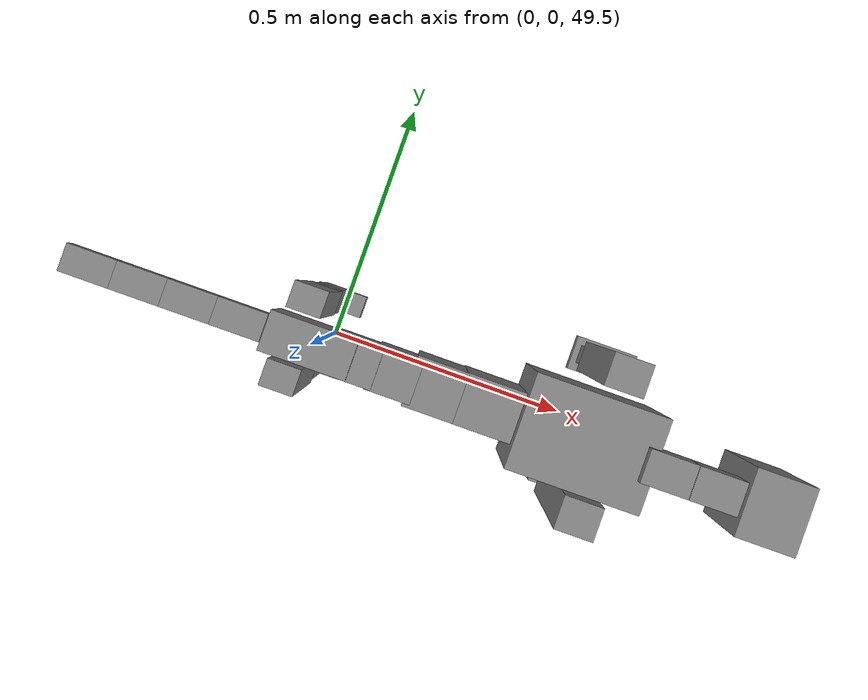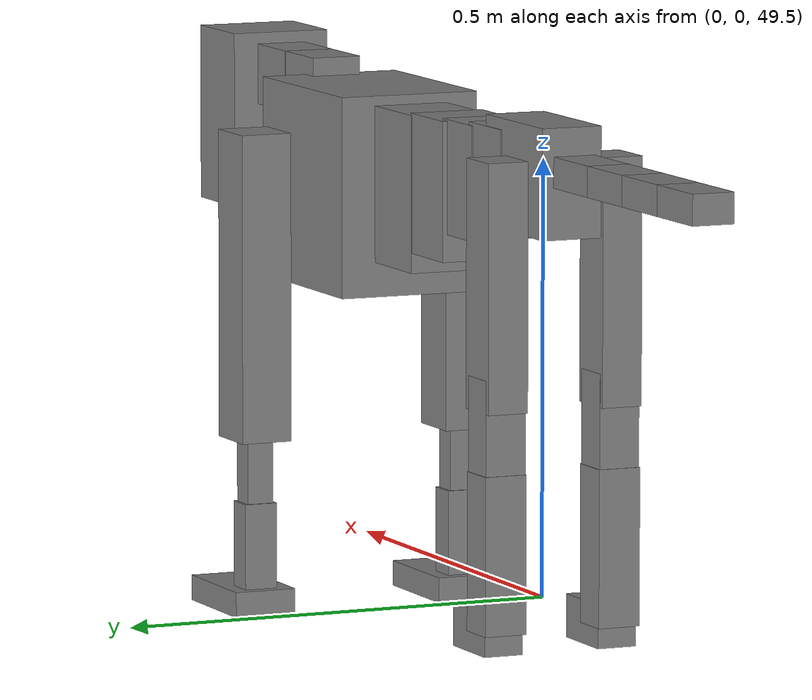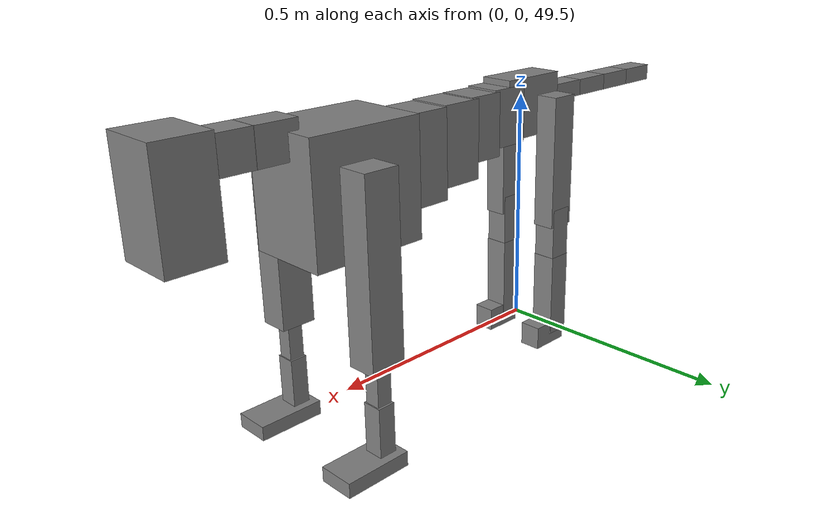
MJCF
<mujoco model="dog">

    <default>
        <joint armature="0.02" stiffness="1" damping="0.2" limited="true"/>
        <geom condim="3" friction="1 0.05 0.05" margin="0.01"/>
        <motor ctrllimited="true" ctrlrange="-1.0 1.0" forcelimited="true" gear="50"/>
    </default>

    <compiler inertiafromgeom="true" angle="radian"/>

    <option timestep="0.016" iterations="50" tolerance="1e-10" solver="Newton" jacobian="dense" cone="pyramidal"/>

    <size nconmax="20000" njmax="60000" nstack="5000000"/>
    <visual>
        <map force="0.1" zfar="30"/>
        <rgba haze="0.15 0.25 0.35 1"/>
        <quality shadowsize="2048"/>
        <global offwidth="800" offheight="800"/>
    </visual>

    <asset>
        <texture type="skybox" builtin="gradient" rgb1="0.3 0.5 0.7" rgb2="0 0 0" width="512" height="512"/>
        <texture name="texplane" type="2d" builtin="checker" rgb1=".2 .3 .4" rgb2=".1 0.15 0.2" width="512" height="512"
                 mark="cross" markrgb=".8 .8 .8"/>
        <texture name="texgeom" type="cube" builtin="flat" mark="cross" width="127" height="1278" rgb1="0.8 0.6 0.4"
                 rgb2="0.8 0.6 0.4" markrgb="1 1 1" random="0.01"/>

        <material name="matplane" reflectance="0.3" texture="texplane" texrepeat="1 1" texuniform="true"/>
        <material name="matgeom" texture="texgeom" texuniform="true" rgba="0.8 0.6 .4 1"/>
    </asset>

    <worldbody>
        <geom name="floor" pos="0 0 0" size="0 0 .25" type="plane" material="matplane" condim="3"/>

        <light directional="false" diffuse=".2 .2 .2" specular="0 0 0" pos="0 0 5" dir="0 0 -1" castshadow="false"/>
        <light mode="targetbodycom" target="torso" directional="false" diffuse=".8 .8 .8" specular="0.3 0.3 0.3"
               pos="0 0 4.0" dir="0 0 -1"/>

        <body name="root" pos="0 0 50">
            <freejoint name="root_1"/>
            <geom type="box" pos="0 0 -0.02" size="0.0774  0.0358  0.063" density="2030"/>

            <body name="spine1" pos="0.054 0 0">
                <joint name="spine1_y" axis="0 1 0" range="0 0.7" limited="true"/>
                <geom type="box" pos="0.02375 0 -0.03" size="0.04375  0.0375  0.05985" density="2030"/>

                <body name="spine2" pos="0.0612 0 0">
                    <joint name="spine2_y" axis="0 1 0" range="-0.15 0.15" limited="true"/>
                    <geom type="box" pos="0.03555  0  -0.04" size="0.04055  0.039  0.06615" density="2030"/>

                    <body name="spine3" pos="0.0730 0 0">
                        <joint name="spine3_y" axis="0 1 0" range="-0.15 0.15" limited="true"/>
                        <geom type="box" pos="0.03555  0  -0.057" size="0.04555  0.0445  0.081" density="2030"/>

                        <body name="spine4" pos="0.0780 0 0">
                            <joint name="spine4_y" axis="0 1 0" range="-0.15 0.15" limited="true"/>
                            <geom type="box" pos="0.05265  0  -0.07" size="0.05265  0.045  0.09135" density="2030"/>

                            <body name="torso" pos="0.1082 0 0">
                                <joint name="torso_y" axis="0 1 0" range="-0.15 0.15" limited="true"/>
                                <geom type="box" pos="0.11925  0  -0.085" size="0.11925  0.085  0.11745"
                                      density="2030"/>

                                <body name="neck1" pos="0.2160  0   0.0180">
                                    <joint name="neck1_y" axis="0 1 0" range="-1.2  -1" limited="true"/>
                                    <geom type="box" pos="0.0423  0  0" size="0.0423  0.03  0.036" density="2325"/>

                                    <body name="neck2" pos="0.0853  0  0">
                                        <joint name="neck2_y" axis="0 1 0" range="0.1  0" limited="true"/>
                                        <geom type="box" pos="0.0423  0  0" size="0.0423  0.03  0.036" density="2325"/>

                                        <body name="head" pos="0.0853  0  0">
                                            <joint name="head_y" axis="0 1 0" range="-0.3  -0.2" limited="true"/>
                                            <geom type="box" pos="0.0531  0  -0.055" size="0.0531  0.06  0.1044"
                                                  density="4030"/>

                                        </body>
                                    </body>
                                </body>

                                <body name="front_shoulder" pos="0.156  0   -0.0480">
                                    <joint name="front_shoulder_y" axis="0 1 0" range="-1 1.5" limited="true"/>
                                    <geom type="box" pos="0 0.13 -0.1553" size="0.0361  0.0308  0.1819" density="1158"/>
                                    <geom type="box" pos="0 -0.13 -0.1553" size="0.0361  0.0308  0.1819"
                                          density="1158"/>

                                    <body name="front_elbow" pos="0  0  -0.3105">
                                        <joint name="front_elbow_y" axis="0 1 0" range="-2 0" limited="true"/>
                                        <geom type="box" pos="0 0.13 -0.0574" size="0.0157  0.0161  0.0574"
                                              density="1081"/>
                                        <geom type="box" pos="0 -0.13 -0.0574" size="0.0157  0.0161  0.0574"
                                              density="1081"/>

                                        <body name="front_wrist" pos="0  0  -0.1149">
                                            <joint name="front_wrist_y" axis="0 1 0" range="-0.2 0" limited="true"/>
                                            <geom type="box" pos="0 0.13 -0.0516" size="0.0179  0.0199  0.0647"
                                                  density="1664"/>
                                            <geom type="box" pos="0 -0.13 -0.0516" size="0.0179  0.0199  0.0647"
                                                  density="1664"/>

                                            <body name="front_finger_end" pos="0  0  -0.1031">
                                                <joint name="front_finger_y" axis="0 1 0" range="-0.4 1"
                                                       limited="true"/>
                                                <geom type="box" pos="0.0374  0.13  0.0000"
                                                      size="0.0685  0.0374  0.0150" density="1515"/>
                                                <geom type="box" pos="0.0374  -0.13  0.0000"
                                                      size="0.0685  0.0374  0.0150" density="1515"/>

                                            </body>

                                        </body>
                                    </body>
                                </body>

                            </body>
                        </body>
                    </body>
                </body>
            </body>

            <body name="back_hip" pos="-0.03 0 -0.018">
                <joint name="back_hip_y" axis="0 1 0" range="-1.5 0.3" limited="true"/>
                <geom type="box" pos="0 0.07 -0.1188" size="0.0307  0.0241  0.1416" density="1154"/>
                <geom type="box" pos="0 -0.07 -0.1188" size="0.0307  0.0241  0.1416" density="1154"/>

                <body name="back_knee" pos="0  0  -0.2376">
                    <joint name="back_knee_y" axis="0 1 0" range="0 2.8" limited="true"/>
                    <geom type="box" pos="0 0.07 -0.0522" size="0.0245  0.0242  0.0677" density="1227"/>
                    <geom type="box" pos="0 -0.07 -0.0522" size="0.0245  0.0242  0.0677" density="1227"/>

                    <body name="back_ankle" pos="0  0  -0.1044">
                        <joint name="back_ankle_y" axis="0 1 0" range="-2.2 0" limited="true"/>
                        <geom type="box" pos="0 0.07 -0.0795" size="0.0252  0.0252  0.0907" density="1284"/>
                        <geom type="box" pos="0 -0.07 -0.0795" size="0.0252  0.0252  0.0907" density="1284"/>

                        <body name="back_toe_end" pos="0  0  -0.1590">
                            <joint name="back_toe_y" axis="0 1 0" range="-0.4 1" limited="true"/>
                            <geom type="box" pos="0.0234  0.07  -0.0100" size="0.0429  0.0234  0.0250" density="1515"/>
                            <geom type="box" pos="0.0234  -0.07  -0.0100" size="0.0429  0.0234  0.0250" density="1515"/>

                        </body>
                    </body>
                </body>
            </body>

            <body name="tail1" pos="-0.074 0 -0.006">
                <joint name="tail1_y" axis="0 1 0" range="-0.2 0.2" limited="true"/>
                <geom type="box" pos="-0.0536  0  0" size="0.045  0.025  0.0175" density="1587"/>

                <body name="tail2" pos="-0.09 0 0">
                    <joint name="tail2_y" axis="0 1 0" range="-0.2 0.2" limited="true"/>
                    <geom type="box" pos="-0.0536  0  0" size="0.045  0.025  0.0175" density="1587"/>

                    <body name="tail3" pos="-0.09 0 0">
                        <joint name="tail3_y" axis="0 1 0" range="-0.2 0.2" limited="true"/>
                        <geom type="box" pos="-0.0536  0  0" size="0.045  0.025  0.0175" density="1587"/>

                        <body name="tail4" pos="-0.09 0 0">
                            <joint name="tail4_y" axis="0 1 0" range="-0.2 0.2" limited="true"/>
                            <geom type="box" pos="-0.0536  0  0" size="0.045  0.025  0.0175" density="1587"/>

                        </body>
                    </body>
                </body>
            </body>
        </body>
    </worldbody>

    <actuator>
        <motor joint="spine1_y" forcerange="-150 150     "/>
        <motor joint="spine2_y" forcerange="-150 150     "/>
        <motor joint="spine3_y" forcerange="-150 150     "/>
        <motor joint="spine4_y" forcerange="-150 150     "/>
        <motor joint="torso_y" forcerange="-150 150     "/>
        <motor joint="neck1_y" forcerange="-100 100       "/>
        <motor joint="neck2_y" forcerange="-100 100       "/>
        <motor joint="head_y" forcerange="-150 150       "/>
        <motor joint="front_shoulder_y" forcerange="-138.10 167.45"/>
        <motor joint="front_elbow_y" forcerange="-106.21 110.66"/>
        <motor joint="front_wrist_y" forcerange="-51.04 107.93"/>
        <motor joint="front_finger_y" forcerange="-63.28 96.04"/>
        <motor joint="back_hip_y" forcerange="-203.26 318.18"/>
        <motor joint="back_knee_y" forcerange="-234.08 317.64"/>
        <motor joint="back_angle_y" forcerange="-215.35 88.29"/>
        <motor joint="back_toe_y" forcerange="-70.76 36.62"/>
        <motor joint="tail1_y" forcerange="-50 50     "/>
        <motor joint="tail2_y" forcerange="-50 50     "/>
        <motor joint="tail3_y" forcerange="-50 50     "/>
        <motor joint="tail4_y" forcerange="-50 50     "/>
    </actuator>
</mujoco>
